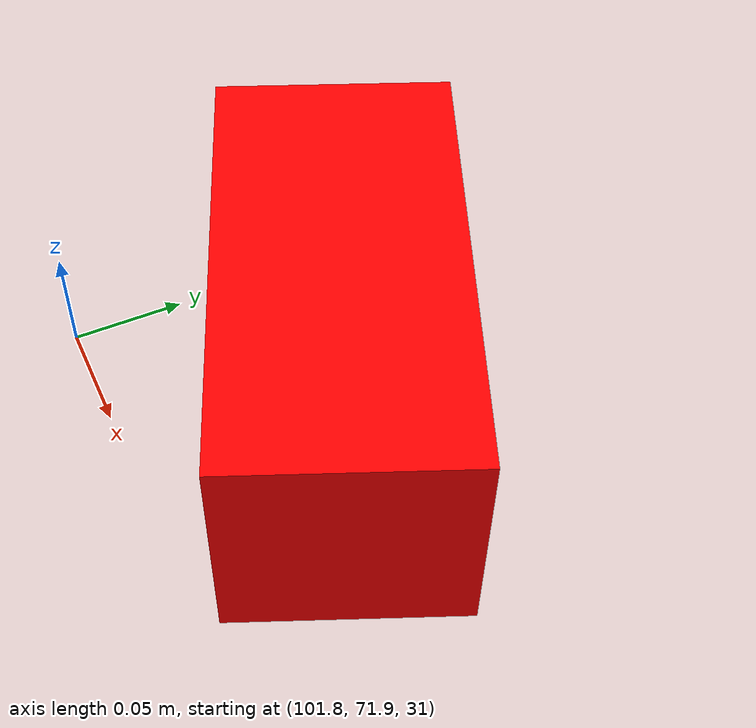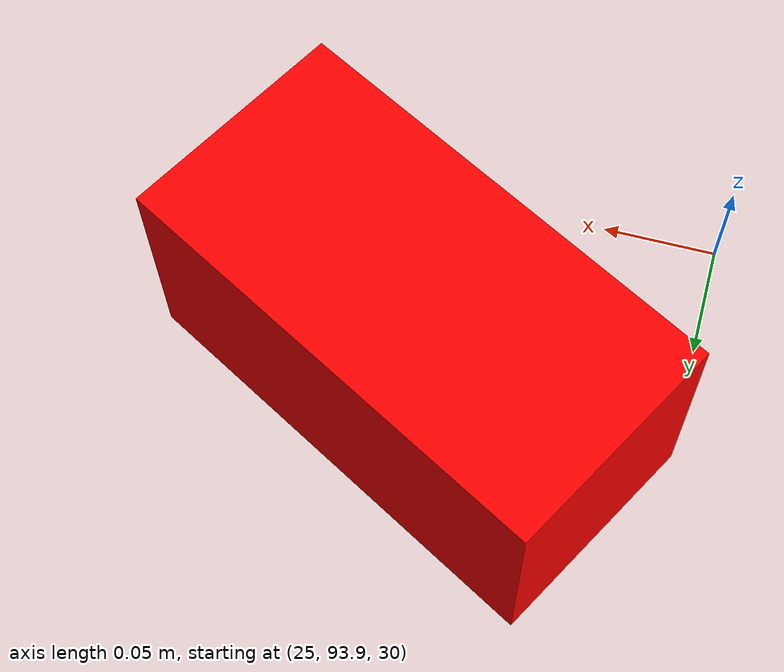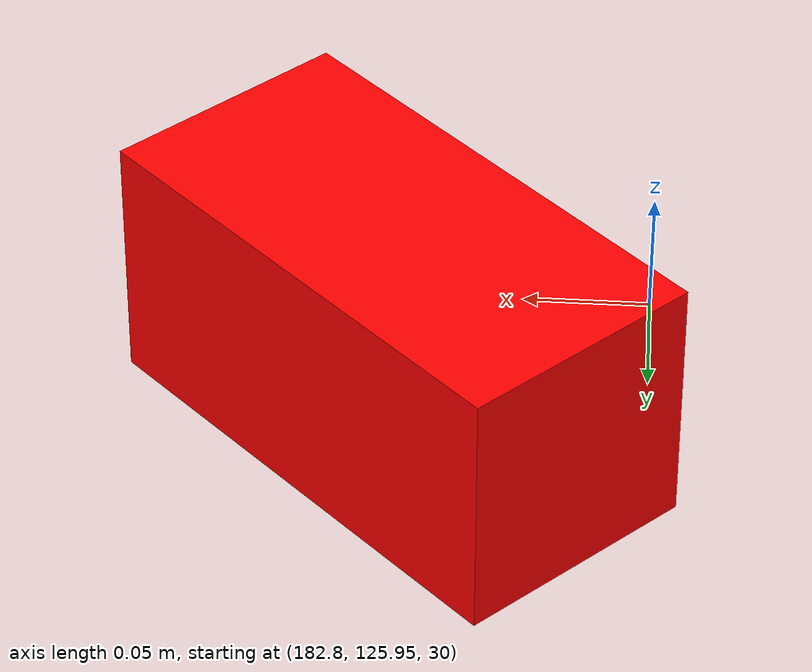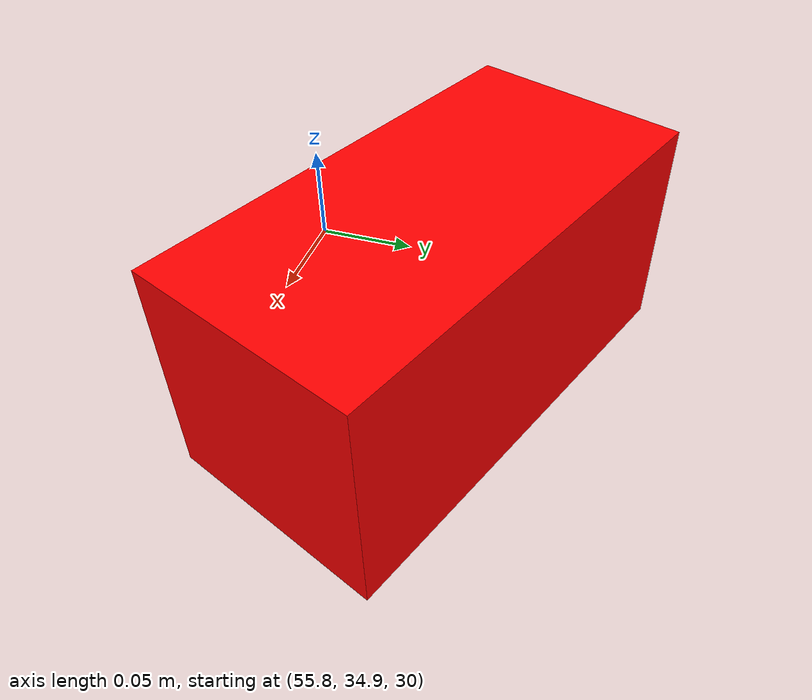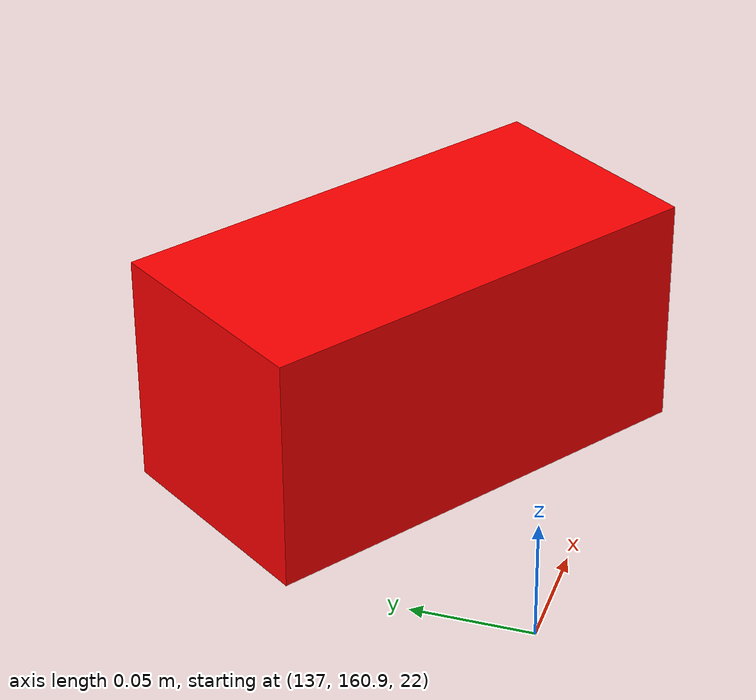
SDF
<sdf version="1.9">
 <world name="AbuDhabiSwarm">
  <physics type="ode">
   <max_step_size>0.004</max_step_size>
   <real_time_factor>1.0</real_time_factor>
   <real_time_update_rate>250</real_time_update_rate>
  </physics>
  <plugin name="gz::sim::systems::Physics" filename="gz-sim-physics-system"/>
  <plugin name="gz::sim::systems::UserCommands" filename="gz-sim-user-commands-system"/>
  <plugin name="gz::sim::systems::SceneBroadcaster" filename="gz-sim-scene-broadcaster-system"/>
  <plugin name="gz::sim::systems::Contact" filename="gz-sim-contact-system"/>
  <plugin name="gz::sim::systems::Imu" filename="gz-sim-imu-system"/>
  <plugin name="gz::sim::systems::AirPressure" filename="gz-sim-air-pressure-system"/>
  <plugin name="gz::sim::systems::ApplyLinkWrench" filename="gz-sim-apply-link-wrench-system"/>
  <plugin name="gz::sim::systems::Sensors" filename="gz-sim-sensors-system">
   <render_engine>ogre2</render_engine>
  </plugin>
  <plugin name="gz::sim::systems::NavSat" filename="gz-sim-navsat-system"/>
  <gravity>0 0 -9.8</gravity>
  <magnetic_field>6e-06 2.3e-05 -4.2e-05</magnetic_field>
  <atmosphere type="adiabatic"/>
  <scene>
   <grid>false</grid>
   <ambient>0.4 0.4 0.4 1</ambient>
   <background>0.7 0.7 0.7 1</background>
   <shadows>true</shadows>
   <grid>true</grid>
  </scene>
  <spherical_coordinates>
   <surface_model>EARTH_WGS84</surface_model>
   <world_frame_orientation>ENU</world_frame_orientation>
   <latitude_deg>24.484043629238872</latitude_deg>
   <longitude_deg>54.36068616768677</longitude_deg>
   <elevation>0</elevation>
   <heading_deg>0</heading_deg>
  </spherical_coordinates>
  <light name="sunUTC" type="directional">
   <pose>0 0 500 0 -0 0</pose>
   <cast_shadows>false</cast_shadows>
   <intensity>2</intensity>
   <direction>0 0 0</direction>
   <diffuse>0.904 0.904 0.904 1</diffuse>
   <specular>0.271 0.271 0.271 1</specular>
   <attenuation><range>1000</range><linear>0</linear><constant>1</constant><quadratic>0</quadratic></attenuation>
   <spot><inner_angle>0</inner_angle><outer_angle>0</outer_angle><falloff>0</falloff></spot>
  </light>
  <model name="camera_0">
   <pose>-17.0 10.0 10.0 0.0 0.75 0</pose>
   <static>1</static>
   <link name="link">
    <pose>0.1 0.05 0.05 0 0 0</pose>
    <visual name="visual">
     <geometry><box><size>0.2 0.1 0.1</size></box></geometry>
     <material>
      <ambient>0.5, 0, 0, 0</ambient>
      <diffuse>1.0, 0, 0, 0</diffuse>
      <emissive>1 1 1 1</emissive>
     </material>
    </visual>
    <sensor name="camera_0" type="boundingbox_camera">
     <camera>
      <horizontal_fov>1.5</horizontal_fov>
      <image><width>640</width><height>480</height></image>
      <clip><near>0.1</near><far>500</far></clip>
      <camera_info_topic>camera_0/info</camera_info_topic>
     </camera>
     <always_on>1</always_on>
     <update_rate>30</update_rate>
     <visualize>true</visualize>
     <topic>camera_0/image</topic>
    </sensor>
   </link>
   <plugin filename="gz-sim-pose-publisher-system" name="gz::sim::systems::PosePublisher">
    <publish_link_pose>false</publish_link_pose>
    <publish_collision_pose>false</publish_collision_pose>
    <publish_visual_pose>false</publish_visual_pose>
    <publish_nested_model_pose>true</publish_nested_model_pose>
   </plugin>
  </model>
  <model name="camera_1">
   <pose>25.0 94.0 30.0 0.0 0 -0.5</pose>
   <static>1</static>
   <link name="link">
    <pose>0.1 0.05 0.05 0 0 0</pose>
    <inertial>
     <mass>0.1</mass>
     <inertia><ixx>0.000166667</ixx><iyy>0.000166667</iyy><izz>0.000166667</izz></inertia>
    </inertial>
    <visual name="visual">
     <geometry><box><size>0.2 0.1 0.1</size></box></geometry>
     <material>
      <ambient>0.5, 0, 0, 0</ambient>
      <diffuse>1.0, 0, 0, 0</diffuse>
      <emissive>1 1 1 1</emissive>
     </material>
    </visual>
    <sensor name="camera_1" type="boundingbox_camera">
     <camera>
      <horizontal_fov>1.5</horizontal_fov>
      <image><width>640</width><height>480</height></image>
      <clip><near>0.1</near><far>500</far></clip>
      <camera_info_topic>camera_1/info</camera_info_topic>
     </camera>
     <always_on>1</always_on>
     <update_rate>5</update_rate>
     <visualize>true</visualize>
     <topic>camera_1/image</topic>
    </sensor>
   </link>
   <plugin filename="gz-sim-pose-publisher-system" name="gz::sim::systems::PosePublisher">
    <publish_link_pose>false</publish_link_pose>
    <publish_collision_pose>false</publish_collision_pose>
    <publish_visual_pose>false</publish_visual_pose>
    <publish_nested_model_pose>true</publish_nested_model_pose>
   </plugin>
  </model>
  <model name="camera_2">
   <pose>75.0 134.0 32.0 0 0.0 -0.5</pose>
   <static>1</static>
   <link name="link">
    <pose>0.1 0.05 0.05 0 0 0</pose>
    <inertial>
     <mass>0.1</mass>
     <inertia><ixx>0.000166667</ixx><iyy>0.000166667</iyy><izz>0.000166667</izz></inertia>
    </inertial>
    <visual name="visual">
     <geometry><box><size>0.2 0.1 0.1</size></box></geometry>
     <material>
      <ambient>0.5, 0, 0, 0</ambient>
      <diffuse>1.0, 0, 0, 0</diffuse>
      <emissive>1 1 1 1</emissive>
     </material>
    </visual>
    <sensor name="camera_2" type="boundingbox_camera">
     <camera>
      <horizontal_fov>1.5</horizontal_fov>
      <image><width>640</width><height>480</height></image>
      <clip><near>0.1</near><far>500</far></clip>
      <camera_info_topic>camera_2/info</camera_info_topic>
     </camera>
     <always_on>1</always_on>
     <update_rate>5</update_rate>
     <visualize>true</visualize>
     <topic>camera_2/image</topic>
    </sensor>
   </link>
   <plugin filename="gz-sim-pose-publisher-system" name="gz::sim::systems::PosePublisher">
    <publish_link_pose>false</publish_link_pose>
    <publish_collision_pose>false</publish_collision_pose>
    <publish_visual_pose>false</publish_visual_pose>
    <publish_nested_model_pose>true</publish_nested_model_pose>
   </plugin>
  </model>
  <model name="camera_3">
   <pose>137.0 161.0 22.0 0 0.0 -0.6</pose>
   <static>1</static>
   <link name="link">
    <pose>0.1 0.05 0.05 0 0 0</pose>
    <inertial>
     <mass>0.1</mass>
     <inertia><ixx>0.000166667</ixx><iyy>0.000166667</iyy><izz>0.000166667</izz></inertia>
    </inertial>
    <visual name="visual">
     <geometry><box><size>0.2 0.1 0.1</size></box></geometry>
     <material>
      <ambient>0.5, 0, 0, 0</ambient>
      <diffuse>1.0, 0, 0, 0</diffuse>
      <emissive>1 1 1 1</emissive>
     </material>
    </visual>
    <sensor name="camera_3" type="boundingbox_camera">
     <camera>
      <horizontal_fov>1.5</horizontal_fov>
      <image><width>640</width><height>480</height></image>
      <clip><near>0.1</near><far>500</far></clip>
      <camera_info_topic>camera_3/info</camera_info_topic>
     </camera>
     <always_on>1</always_on>
     <update_rate>5</update_rate>
     <visualize>true</visualize>
     <topic>camera_3/image</topic>
    </sensor>
   </link>
   <plugin filename="gz-sim-pose-publisher-system" name="gz::sim::systems::PosePublisher">
    <publish_link_pose>false</publish_link_pose>
    <publish_collision_pose>false</publish_collision_pose>
    <publish_visual_pose>false</publish_visual_pose>
    <publish_nested_model_pose>true</publish_nested_model_pose>
   </plugin>
  </model>
  <model name="camera_4">
   <pose>24 24.0 30.0 0 0.5 3.1</pose>
   <static>1</static>
   <link name="link">
    <pose>0.1 0.05 0.05 0 0 0</pose>
    <visual name="visual">
     <geometry><box><size>0.2 0.1 0.1</size></box></geometry>
     <material>
      <ambient>0.5, 0, 0, 0</ambient>
      <diffuse>1.0, 0, 0, 0</diffuse>
      <emissive>1 1 1 1</emissive>
     </material>
    </visual>
    <sensor name="camera_4" type="boundingbox_camera">
     <camera>
      <horizontal_fov>1.5</horizontal_fov>
      <image><width>640</width><height>480</height></image>
      <clip><near>0.1</near><far>500</far></clip>
      <camera_info_topic>camera_4/info</camera_info_topic>
     </camera>
     <always_on>1</always_on>
     <update_rate>30</update_rate>
     <visualize>true</visualize>
     <topic>camera_4/image</topic>
    </sensor>
   </link>
   <plugin filename="gz-sim-pose-publisher-system" name="gz::sim::systems::PosePublisher">
    <publish_link_pose>false</publish_link_pose>
    <publish_collision_pose>false</publish_collision_pose>
    <publish_visual_pose>false</publish_visual_pose>
    <publish_nested_model_pose>true</publish_nested_model_pose>
   </plugin>
  </model>
  <model name="camera_5">
   <pose>56 35 30.0 0 0.0 2.75</pose>
   <static>1</static>
   <link name="link">
    <pose>0.1 0.05 0.05 0 0 0</pose>
    <inertial>
     <mass>0.1</mass>
     <inertia><ixx>0.000166667</ixx><iyy>0.000166667</iyy><izz>0.000166667</izz></inertia>
    </inertial>
    <visual name="visual">
     <geometry><box><size>0.2 0.1 0.1</size></box></geometry>
     <material>
      <ambient>0.5, 0, 0, 0</ambient>
      <diffuse>1.0, 0, 0, 0</diffuse>
      <emissive>1 1 1 1</emissive>
     </material>
    </visual>
    <sensor name="camera_5" type="boundingbox_camera">
     <camera>
      <horizontal_fov>1.5</horizontal_fov>
      <image><width>640</width><height>480</height></image>
      <clip><near>0.1</near><far>500</far></clip>
      <camera_info_topic>camera_5/info</camera_info_topic>
     </camera>
     <always_on>1</always_on>
     <update_rate>5</update_rate>
     <visualize>true</visualize>
     <topic>camera_5/image</topic>
    </sensor>
   </link>
   <plugin filename="gz-sim-pose-publisher-system" name="gz::sim::systems::PosePublisher">
    <publish_link_pose>false</publish_link_pose>
    <publish_collision_pose>false</publish_collision_pose>
    <publish_visual_pose>false</publish_visual_pose>
    <publish_nested_model_pose>true</publish_nested_model_pose>
   </plugin>
  </model>
  <model name="camera_6">
   <pose>102 72 31.0 0 0.0 2.75</pose>
   <static>1</static>
   <link name="link">
    <pose>0.1 0.05 0.05 0 0 0</pose>
    <inertial>
     <mass>0.1</mass>
     <inertia><ixx>0.000166667</ixx><iyy>0.000166667</iyy><izz>0.000166667</izz></inertia>
    </inertial>
    <visual name="visual">
     <geometry><box><size>0.2 0.1 0.1</size></box></geometry>
     <material>
      <ambient>0.5, 0, 0, 0</ambient>
      <diffuse>1.0, 0, 0, 0</diffuse>
      <emissive>1 1 1 1</emissive>
     </material>
    </visual>
    <sensor name="camera_6" type="boundingbox_camera">
     <camera>
      <horizontal_fov>1.5</horizontal_fov>
      <image><width>640</width><height>480</height></image>
      <clip><near>0.1</near><far>500</far></clip>
      <camera_info_topic>camera_6/info</camera_info_topic>
     </camera>
     <always_on>1</always_on>
     <update_rate>5</update_rate>
     <visualize>true</visualize>
     <topic>camera_6/image</topic>
    </sensor>
   </link>
   <plugin filename="gz-sim-pose-publisher-system" name="gz::sim::systems::PosePublisher">
    <publish_link_pose>false</publish_link_pose>
    <publish_collision_pose>false</publish_collision_pose>
    <publish_visual_pose>false</publish_visual_pose>
    <publish_nested_model_pose>true</publish_nested_model_pose>
   </plugin>
  </model>
  <model name="camera_7">
   <pose>183 126 30.0 0 0.0 2.35</pose>
   <static>1</static>
   <link name="link">
    <pose>0.1 0.05 0.05 0 0 0</pose>
    <inertial>
     <mass>0.1</mass>
     <inertia><ixx>0.000166667</ixx><iyy>0.000166667</iyy><izz>0.000166667</izz></inertia>
    </inertial>
    <visual name="visual">
     <geometry><box><size>0.2 0.1 0.1</size></box></geometry>
     <material>
      <ambient>0.5, 0, 0, 0</ambient>
      <diffuse>1.0, 0, 0, 0</diffuse>
      <emissive>1 1 1 1</emissive>
     </material>
    </visual>
    <sensor name="camera_7" type="boundingbox_camera">
     <camera>
      <horizontal_fov>1.5</horizontal_fov>
      <image><width>640</width><height>480</height></image>
      <clip><near>0.1</near><far>500</far></clip>
      <camera_info_topic>camera_7/info</camera_info_topic>
     </camera>
     <always_on>1</always_on>
     <update_rate>5</update_rate>
     <visualize>true</visualize>
     <topic>camera_7/image</topic>
    </sensor>
   </link>
   <plugin filename="gz-sim-pose-publisher-system" name="gz::sim::systems::PosePublisher">
    <publish_link_pose>false</publish_link_pose>
    <publish_collision_pose>false</publish_collision_pose>
    <publish_visual_pose>false</publish_visual_pose>
    <publish_nested_model_pose>true</publish_nested_model_pose>
   </plugin>
  </model>
 </world>
</sdf>
